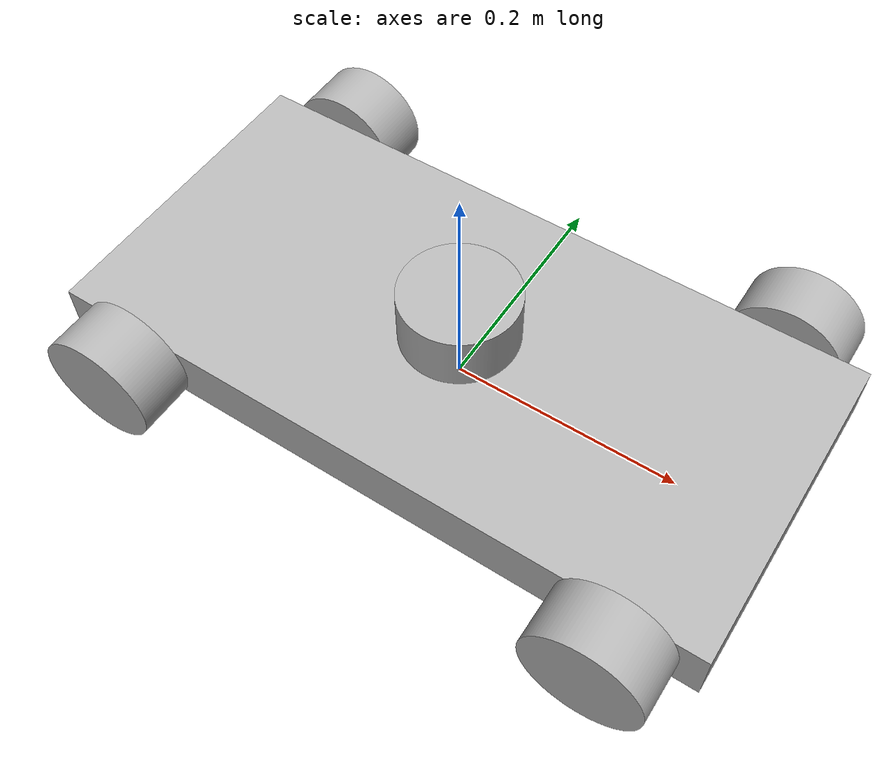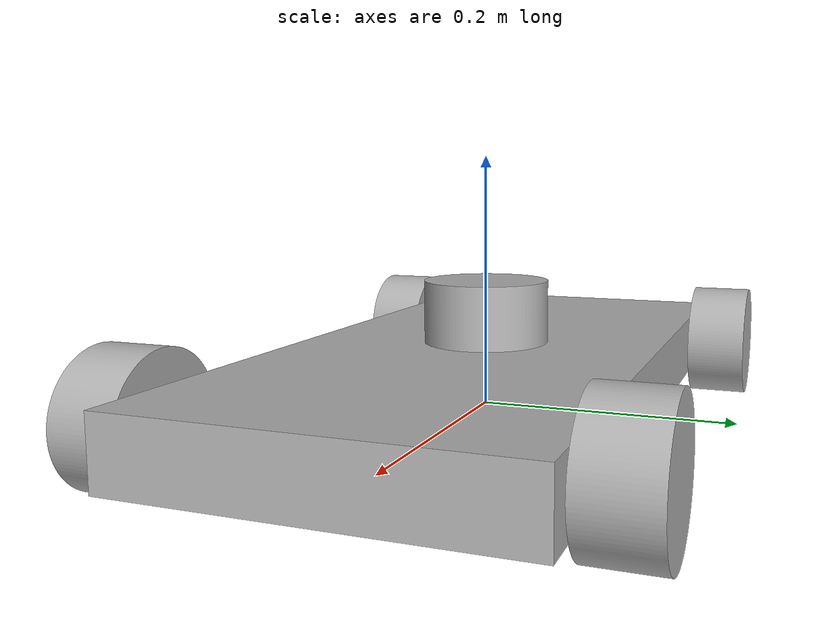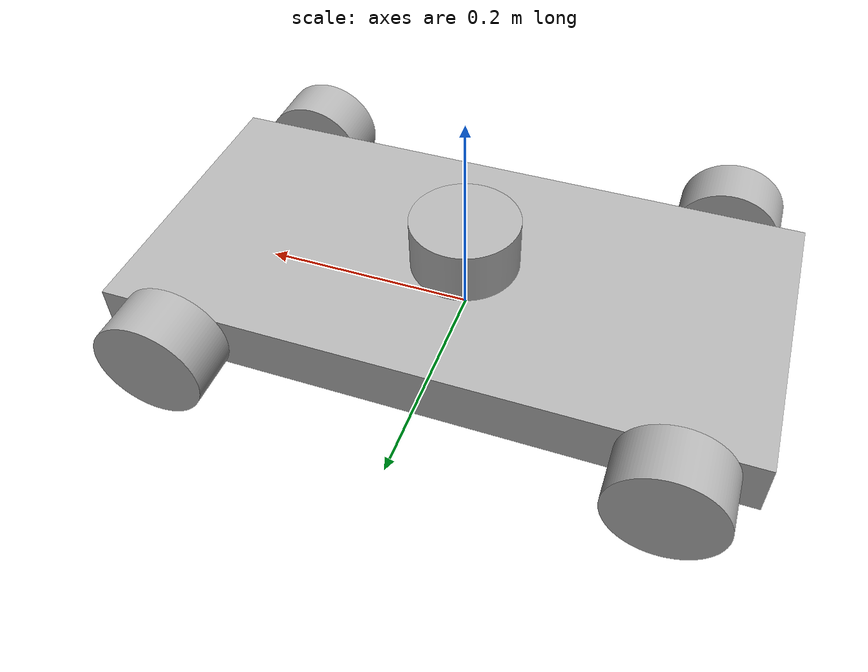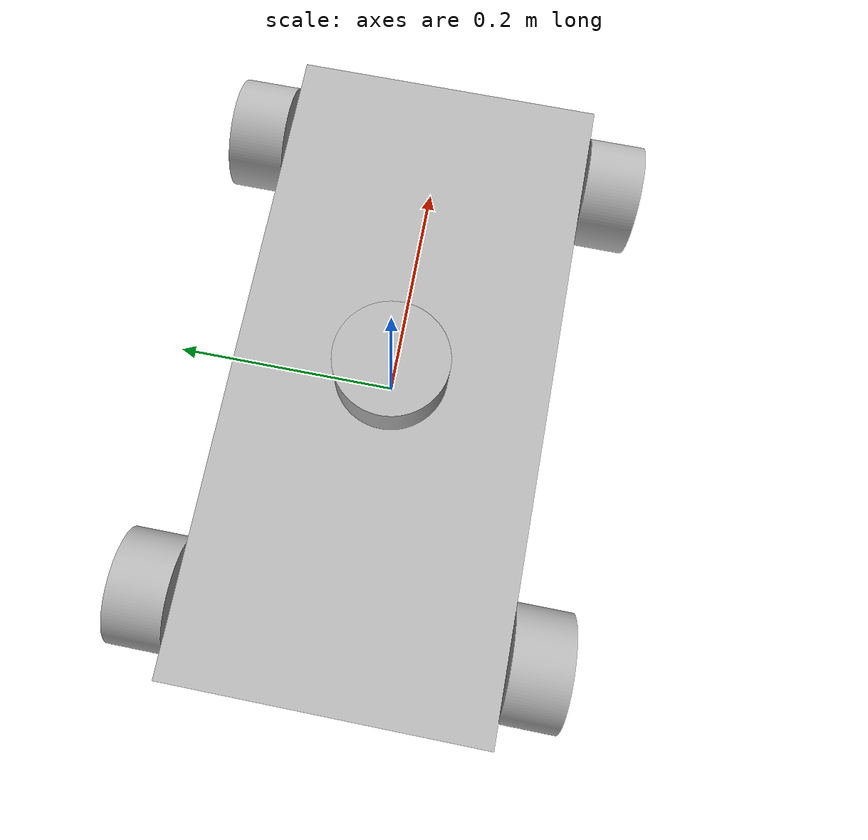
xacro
<?xml version="1.0" ?>
<robot name="eternal_bot" xmlns:xacro="http://www.ros.org/wiki/xacro">

<xacro:include filename="$(find eternal_bot_description)/urdf/materials.xacro" />
<xacro:include filename="$(find eternal_bot_description)/urdf/eternal_bot.gazebo" />
<link name="base_link">
  <inertial>
    <origin xyz="0.0 0.0 0.025600000000000005" rpy="0 0 0"/>
    <mass value="14"/>
    <inertia ixx="0.094525" iyy="0.395525" izz="0.483933" ixy="0.0" iyz="0.0" ixz="0.0"/>
  </inertial>
  <visual>
    <origin xyz="0 0 0" rpy="0 0 0"/>
    <geometry>
      <mesh filename="file://$(find eternal_bot_description)/meshes/base_link.stl" scale="0.001 0.001 0.001"/>
    </geometry>
    <material name="silver"/>
  </visual>
  <collision>
    <origin xyz="0 0 0" rpy="0 0 0"/>
    <geometry>
      <mesh filename="file://$(find eternal_bot_description)/meshes/base_link.stl" scale="0.001 0.001 0.001"/>
    </geometry>
  </collision>
</link>

<link name="front_left_1">
  <inertial>
    <origin xyz="-2.220446049250313e-16 0.025000000000000022 1.97758476261356e-16" rpy="0 0 0"/>
    <mass value="0.4"/>
    <inertia ixx="0.000333" iyy="0.0005" izz="0.000333" ixy="0.0" iyz="0.0" ixz="0.0"/>
  </inertial>
  <visual>
    <origin xyz="-0.22 -0.14 -0.0256" rpy="0 0 0"/>
    <geometry>
      <mesh filename="file://$(find eternal_bot_description)/meshes/front_left_1.stl" scale="0.001 0.001 0.001"/>
    </geometry>
    <material name="silver"/>
  </visual>
  <collision> <!-- sphere, not STL: mesh contacts ignore surface friction in gz; sphere + unrotated frame keeps fdir1 in link axes -->
    <origin xyz="0 0.025 0" rpy="0 0 0"/>
    <geometry>
      <sphere radius="0.05"/>
    </geometry>
  </collision>
</link>

<link name="front_right_1">
  <inertial>
    <origin xyz="2.220446049250313e-16 -0.025000000000000022 9.367506770274758e-17" rpy="0 0 0"/>
    <mass value="0.4"/>
    <inertia ixx="0.000333" iyy="0.0005" izz="0.000333" ixy="0.0" iyz="-0.0" ixz="-0.0"/>
  </inertial>
  <visual>
    <origin xyz="-0.22 0.14 -0.0256" rpy="0 0 0"/>
    <geometry>
      <mesh filename="file://$(find eternal_bot_description)/meshes/front_right_1.stl" scale="0.001 0.001 0.001"/>
    </geometry>
    <material name="silver"/>
  </visual>
  <collision> <!-- sphere, not STL: mesh contacts ignore surface friction in gz; sphere + unrotated frame keeps fdir1 in link axes -->
    <origin xyz="0 -0.025 0" rpy="0 0 0"/>
    <geometry>
      <sphere radius="0.05"/>
    </geometry>
  </collision>
</link>

<link name="rear_right_1">
  <inertial>
    <origin xyz="-7.494005416219807e-16 -0.025000000000000022 -3.122502256758253e-17" rpy="0 0 0"/>
    <mass value="0.4"/>
    <inertia ixx="0.000333" iyy="0.0005" izz="0.000333" ixy="-0.0" iyz="-0.0" ixz="-0.0"/>
  </inertial>
  <visual>
    <origin xyz="0.22 0.14 -0.0256" rpy="0 0 0"/>
    <geometry>
      <mesh filename="file://$(find eternal_bot_description)/meshes/rear_right_1.stl" scale="0.001 0.001 0.001"/>
    </geometry>
    <material name="silver"/>
  </visual>
  <collision> <!-- sphere, not STL: mesh contacts ignore surface friction in gz; sphere + unrotated frame keeps fdir1 in link axes -->
    <origin xyz="0 -0.025 0" rpy="0 0 0"/>
    <geometry>
      <sphere radius="0.05"/>
    </geometry>
  </collision>
</link>

<link name="rear_left_1">
  <inertial>
    <origin xyz="0.0 0.025000000000000022 1.3773704399255848e-15" rpy="0 0 0"/>
    <mass value="0.4"/>
    <inertia ixx="0.000333" iyy="0.0005" izz="0.000333" ixy="0.0" iyz="0.0" ixz="-0.0"/>
  </inertial>
  <visual>
    <origin xyz="0.22 -0.14 -0.0256" rpy="0 0 0"/>
    <geometry>
      <mesh filename="file://$(find eternal_bot_description)/meshes/rear_left_1.stl" scale="0.001 0.001 0.001"/>
    </geometry>
    <material name="silver"/>
  </visual>
  <collision> <!-- sphere, not STL: mesh contacts ignore surface friction in gz; sphere + unrotated frame keeps fdir1 in link axes -->
    <origin xyz="0 0.025 0" rpy="0 0 0"/>
    <geometry>
      <sphere radius="0.05"/>
    </geometry>
  </collision>
</link>

<link name="lidar_1">
  <inertial>
    <origin xyz="-5.790023100122029e-18 5.790023100122029e-18 -0.03" rpy="0 0 0"/>
    <mass value="0.15"/>
    <inertia ixx="0.000125" iyy="0.000125" izz="0.0001875" ixy="-0.0" iyz="-0.0" ixz="-0.0"/>
  </inertial>
  <visual>
    <origin xyz="-0.0 -0.0 -0.1062" rpy="0 0 0"/>
    <geometry>
      <mesh filename="file://$(find eternal_bot_description)/meshes/lidar_1.stl" scale="0.001 0.001 0.001"/>
    </geometry>
    <material name="silver"/>
  </visual>
  <collision>
    <origin xyz="-0.0 -0.0 -0.1062" rpy="0 0 0"/>
    <geometry>
      <mesh filename="file://$(find eternal_bot_description)/meshes/lidar_1.stl" scale="0.001 0.001 0.001"/>
    </geometry>
  </collision>
</link>

<joint name="front_left_joint" type="continuous">
  <origin xyz="0.22 0.14 0.0256" rpy="0 0 0"/>
  <parent link="base_link"/>
  <child link="front_left_1"/>
  <axis xyz="0.0 1.0 0.0"/>
</joint>

<joint name="front_right_joint" type="continuous">
  <origin xyz="0.22 -0.14 0.0256" rpy="0 0 0"/>
  <parent link="base_link"/>
  <child link="front_right_1"/>
  <axis xyz="0.0 1.0 0.0"/>
</joint>

<joint name="rear_right_joint" type="continuous">
  <origin xyz="-0.22 -0.14 0.0256" rpy="0 0 0"/>
  <parent link="base_link"/>
  <child link="rear_right_1"/>
  <axis xyz="0.0 1.0 0.0"/>
</joint>

<joint name="rear_left_joint" type="continuous">
  <origin xyz="-0.22 0.14 0.0256" rpy="0 0 0"/>
  <parent link="base_link"/>
  <child link="rear_left_1"/>
  <axis xyz="0.0 1.0 0.0"/>
</joint>

<joint name="lidar_joint" type="fixed">
  <origin xyz="0.0 0.0 0.1062" rpy="0 0 0"/>
  <parent link="base_link"/>
  <child link="lidar_1"/>
</joint>

</robot>

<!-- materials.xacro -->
<robot name="eternal_bot" xmlns:xacro="http://www.ros.org/wiki/xacro" >

<material name="silver">
  <color rgba="0.700 0.700 0.700 1.000"/>
</material>

</robot>

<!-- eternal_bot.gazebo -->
<robot name="eternal_bot" xmlns:xacro="http://www.ros.org/wiki/xacro" >

<xacro:property name="body_color" value="Gazebo/Silver" />

<!-- roller emulation (as in gz mecanum_drive.sdf): grip only along fdir1 (+-45deg), free-slip across it; launch file tags fdir1 with gz:expressed_in=base_link (URDF cannot), else it spins with the wheel -->
<xacro:macro name="wheel_gazebo" params="link fdir">
  <gazebo reference="${link}">
    <material>${body_color}</material>
    <mu1>1.0</mu1>
    <mu2>0.0</mu2>
    <fdir1>${fdir}</fdir1>
  </gazebo>
</xacro:macro>

<gazebo>
  <!-- holonomic drive without modelling rollers: plugin maps body twist to the 4 wheel velocities -->
  <plugin filename="gz-sim-mecanum-drive-system"
          name="gz::sim::systems::MecanumDrive">
    <front_left_joint>front_left_joint</front_left_joint>
    <front_right_joint>front_right_joint</front_right_joint>
    <back_left_joint>rear_left_joint</back_left_joint>
    <back_right_joint>rear_right_joint</back_right_joint>
    <wheel_separation>0.33</wheel_separation>
    <wheelbase>0.44</wheelbase>
    <wheel_radius>0.05</wheel_radius>
    <topic>cmd_vel</topic>
    <odom_topic>odom</odom_topic>
    <tf_topic>tf</tf_topic>
    <frame_id>odom</frame_id>
    <child_frame_id>base_link</child_frame_id>
    <odom_publisher_frequency>50</odom_publisher_frequency>
  </plugin>
  <!-- renders sensors (lidar) for sensor entities; empty.sdf doesn't load it, so it's loaded from the model; ogre needed on the VM -->
  <plugin filename="gz-sim-sensors-system"
          name="gz::sim::systems::Sensors">
    <render_engine>ogre</render_engine>
  </plugin>
  <plugin filename="gz-sim-joint-state-publisher-system"
          name="gz::sim::systems::JointStatePublisher">
    <topic>joint_states</topic>
  </plugin>
</gazebo>

<gazebo reference="base_link">
  <material>${body_color}</material>
  <mu1>0.2</mu1>
  <mu2>0.2</mu2>
  <gravity>true</gravity>
</gazebo>

<xacro:wheel_gazebo link="front_left_1" fdir="1 -1 0"/>
<xacro:wheel_gazebo link="front_right_1" fdir="1 1 0"/>
<xacro:wheel_gazebo link="rear_right_1" fdir="1 -1 0"/>
<xacro:wheel_gazebo link="rear_left_1" fdir="1 1 0"/>

<gazebo reference="lidar_1">
  <material>${body_color}</material>
  <mu1>0.2</mu1>
  <mu2>0.2</mu2>
  <sensor name="lidar" type="gpu_lidar">
    <topic>scan</topic>
    <gz_frame_id>lidar_1</gz_frame_id>
    <update_rate>10</update_rate>
    <always_on>true</always_on>
    <visualize>false</visualize>
    <lidar>
      <scan>
        <horizontal>
          <samples>360</samples>
          <resolution>1</resolution>
          <min_angle>-3.14159</min_angle>
          <max_angle>3.14159</max_angle>
        </horizontal>
      </scan>
      <range>
        <min>0.12</min>
        <max>12.0</max>
        <resolution>0.01</resolution>
      </range>
    </lidar>
  </sensor>
</gazebo>

</robot>
